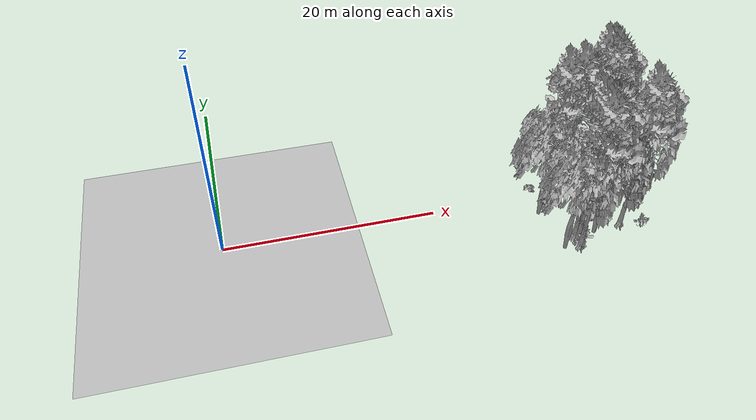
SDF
<sdf version="1.7">
 <world name="default">
  <model name="ground_plane">
   <static>1</static>
   <link name="link">
    <collision name="collision">
     <pose>-50 0 0 0 -0 0</pose>
     <geometry><plane><normal>0 0 1</normal><size>80 80</size></plane></geometry>
     <surface><contact><ode><min_depth>0.01</min_depth><max_vel>0</max_vel></ode></contact></surface>
    </collision>
    <visual name="grass">
     <cast_shadows>0</cast_shadows>
     <geometry>
      <mesh>
       <scale>0.46714285714285714 0.46714285714285714 0.1</scale>
       <uri>file://grass_plane/meshes/grass_plane.dae</uri>
      </mesh>
     </geometry>
    </visual>
   </link>
  </model>
  <model name="Tree 59">
   <static>1</static>
   <pose>36.104915251675095 0.8604717259022365 0 1.57079 -0 0</pose>
   <link name="link">
    <collision name="collision">
     <geometry><mesh><scale>3.5 5 3.5</scale><uri>model://tree_9/meshes/tree_9.obj</uri></mesh></geometry>
    </collision>
    <visual name="visual">
     <geometry><mesh><scale>3.5 5 3.5</scale><uri>model://tree_9/meshes/tree_9.obj</uri></mesh></geometry>
    </visual>
   </link>
  </model>
  <model name="Tree 112">
   <static>1</static>
   <pose>31.931948652359424 -6.317866740346531 0 1.57079 -0 0</pose>
   <link name="link">
    <collision name="collision">
     <geometry><mesh><scale>3.5 5 3.5</scale><uri>model://tree_9/meshes/tree_9.obj</uri></mesh></geometry>
    </collision>
    <visual name="visual">
     <geometry><mesh><scale>3.5 5 3.5</scale><uri>model://tree_9/meshes/tree_9.obj</uri></mesh></geometry>
    </visual>
   </link>
  </model>
  <model name="Tree 260">
   <static>1</static>
   <pose>32.30382466326951 -1.0779947746441394 0 1.57079 -0 0</pose>
   <link name="link">
    <collision name="collision">
     <geometry><mesh><scale>3.5 5 3.5</scale><uri>model://tree_9/meshes/tree_9.obj</uri></mesh></geometry>
    </collision>
    <visual name="visual">
     <geometry><mesh><scale>3.5 5 3.5</scale><uri>model://tree_9/meshes/tree_9.obj</uri></mesh></geometry>
    </visual>
   </link>
  </model>
  <model name="Tree 273">
   <static>1</static>
   <pose>36.712944995056375 -5.247952258374525 0 1.57079 -0 0</pose>
   <link name="link">
    <collision name="collision">
     <geometry><mesh><scale>3.5 5 3.5</scale><uri>model://tree_9/meshes/tree_9.obj</uri></mesh></geometry>
    </collision>
    <visual name="visual">
     <geometry><mesh><scale>3.5 5 3.5</scale><uri>model://tree_9/meshes/tree_9.obj</uri></mesh></geometry>
    </visual>
   </link>
  </model>
  <model name="Tree 300">
   <static>1</static>
   <pose>33.743679119290675 -5.760114541287464 0 1.57079 -0 0</pose>
   <link name="link">
    <collision name="collision">
     <geometry><mesh><scale>3.5 5 3.5</scale><uri>model://tree_2/meshes/tree_2.obj</uri></mesh></geometry>
    </collision>
    <visual name="visual">
     <geometry><mesh><scale>3.5 5 3.5</scale><uri>model://tree_2/meshes/tree_2.obj</uri></mesh></geometry>
    </visual>
   </link>
  </model>
  <model name="Tree 344">
   <static>1</static>
   <pose>30.266762996817604 -6.985094857168399 0 1.57079 -0 0</pose>
   <link name="link">
    <collision name="collision">
     <geometry><mesh><scale>3.5 5 3.5</scale><uri>model://tree_2/meshes/tree_2.obj</uri></mesh></geometry>
    </collision>
    <visual name="visual">
     <geometry><mesh><scale>3.5 5 3.5</scale><uri>model://tree_2/meshes/tree_2.obj</uri></mesh></geometry>
    </visual>
   </link>
  </model>
  <model name="Tree 381">
   <static>1</static>
   <pose>29.628955810943168 -2.3416753122324963 0 1.57079 -0 0</pose>
   <link name="link">
    <collision name="collision">
     <geometry><mesh><scale>3.5 5 3.5</scale><uri>model://tree_2/meshes/tree_2.obj</uri></mesh></geometry>
    </collision>
    <visual name="visual">
     <geometry><mesh><scale>3.5 5 3.5</scale><uri>model://tree_2/meshes/tree_2.obj</uri></mesh></geometry>
    </visual>
   </link>
  </model>
  <model name="Tree 400">
   <static>1</static>
   <pose>31.89485313371354 -7.02762729464304 0 1.57079 -0 0</pose>
   <link name="link">
    <collision name="collision">
     <geometry><mesh><scale>3.5 5 3.5</scale><uri>model://tree_9/meshes/tree_9.obj</uri></mesh></geometry>
    </collision>
    <visual name="visual">
     <geometry><mesh><scale>3.5 5 3.5</scale><uri>model://tree_9/meshes/tree_9.obj</uri></mesh></geometry>
    </visual>
   </link>
  </model>
  <model name="Tree 413">
   <static>1</static>
   <pose>36.054698841761734 0.38433140887075723 0 1.57079 -0 0</pose>
   <link name="link">
    <collision name="collision">
     <geometry><mesh><scale>3.5 5 3.5</scale><uri>model://tree_9/meshes/tree_9.obj</uri></mesh></geometry>
    </collision>
    <visual name="visual">
     <geometry><mesh><scale>3.5 5 3.5</scale><uri>model://tree_9/meshes/tree_9.obj</uri></mesh></geometry>
    </visual>
   </link>
  </model>
  <model name="Tree 486">
   <static>1</static>
   <pose>37.78900538498483 -2.8352211880456863 0 1.57079 -0 0</pose>
   <link name="link">
    <collision name="collision">
     <geometry><mesh><scale>3.5 5 3.5</scale><uri>model://tree_2/meshes/tree_2.obj</uri></mesh></geometry>
    </collision>
    <visual name="visual">
     <geometry><mesh><scale>3.5 5 3.5</scale><uri>model://tree_2/meshes/tree_2.obj</uri></mesh></geometry>
    </visual>
   </link>
  </model>
  <model name="Tree 520">
   <static>1</static>
   <pose>31.85042376067574 -5.7572373308276354 0 1.57079 -0 0</pose>
   <link name="link">
    <collision name="collision">
     <geometry><mesh><scale>3.5 5 3.5</scale><uri>model://tree_9/meshes/tree_9.obj</uri></mesh></geometry>
    </collision>
    <visual name="visual">
     <geometry><mesh><scale>3.5 5 3.5</scale><uri>model://tree_9/meshes/tree_9.obj</uri></mesh></geometry>
    </visual>
   </link>
  </model>
  <model name="Tree 528">
   <static>1</static>
   <pose>33.67421280121701 -5.78843916075958 0 1.57079 -0 0</pose>
   <link name="link">
    <collision name="collision">
     <geometry><mesh><scale>3.5 5 3.5</scale><uri>model://tree_2/meshes/tree_2.obj</uri></mesh></geometry>
    </collision>
    <visual name="visual">
     <geometry><mesh><scale>3.5 5 3.5</scale><uri>model://tree_2/meshes/tree_2.obj</uri></mesh></geometry>
    </visual>
   </link>
  </model>
  <model name="Tree 544">
   <static>1</static>
   <pose>35.584777812214156 0.9781660692755807 0 1.57079 -0 0</pose>
   <link name="link">
    <collision name="collision">
     <geometry><mesh><scale>3.5 5 3.5</scale><uri>model://tree_9/meshes/tree_9.obj</uri></mesh></geometry>
    </collision>
    <visual name="visual">
     <geometry><mesh><scale>3.5 5 3.5</scale><uri>model://tree_9/meshes/tree_9.obj</uri></mesh></geometry>
    </visual>
   </link>
  </model>
  <model name="Tree 566">
   <static>1</static>
   <pose>30.82942290782495 -1.405714721545749 0 1.57079 -0 0</pose>
   <link name="link">
    <collision name="collision">
     <geometry><mesh><scale>3.5 5 3.5</scale><uri>model://tree_9/meshes/tree_9.obj</uri></mesh></geometry>
    </collision>
    <visual name="visual">
     <geometry><mesh><scale>3.5 5 3.5</scale><uri>model://tree_9/meshes/tree_9.obj</uri></mesh></geometry>
    </visual>
   </link>
  </model>
  <model name="Bush 15">
   <static>1</static>
   <pose>30.090377427757105 0.9655497179009558 0 1.57079 -0 0</pose>
   <link name="link">
    <collision name="collision">
     <geometry><mesh><scale>2 2 2</scale><uri>model://bush_2/meshes/bush_2.obj</uri></mesh></geometry>
     <surface><contact><collide_without_contact>false</collide_without_contact></contact></surface>
    </collision>
    <visual name="visual">
     <geometry><mesh><scale>2 2 2</scale><uri>model://bush_2/meshes/bush_2.obj</uri></mesh></geometry>
    </visual>
   </link>
  </model>
  <model name="Bush 20">
   <static>1</static>
   <pose>38.33905507918256 -6.197779600327387 0 1.57079 -0 0</pose>
   <link name="link">
    <collision name="collision">
     <geometry><mesh><scale>2 2 2</scale><uri>model://bush_4/meshes/bush_4.obj</uri></mesh></geometry>
     <surface><contact><collide_without_contact>false</collide_without_contact></contact></surface>
    </collision>
    <visual name="visual">
     <geometry><mesh><scale>2 2 2</scale><uri>model://bush_4/meshes/bush_4.obj</uri></mesh></geometry>
    </visual>
   </link>
  </model>
  <model name="Bush 80">
   <static>1</static>
   <pose>38.381997279303675 -1.0571922986043916 0 1.57079 -0 0</pose>
   <link name="link">
    <collision name="collision">
     <geometry><mesh><scale>2 2 2</scale><uri>model://bush_2/meshes/bush_2.obj</uri></mesh></geometry>
     <surface><contact><collide_without_contact>false</collide_without_contact></contact></surface>
    </collision>
    <visual name="visual">
     <geometry><mesh><scale>2 2 2</scale><uri>model://bush_2/meshes/bush_2.obj</uri></mesh></geometry>
    </visual>
   </link>
  </model>
  <model name="Bush 137">
   <static>1</static>
   <pose>31.901949626886065 -6.92093064834684 0 1.57079 -0 0</pose>
   <link name="link">
    <collision name="collision">
     <geometry><mesh><scale>2 2 2</scale><uri>model://bush_2/meshes/bush_2.obj</uri></mesh></geometry>
     <surface><contact><collide_without_contact>false</collide_without_contact></contact></surface>
    </collision>
    <visual name="visual">
     <geometry><mesh><scale>2 2 2</scale><uri>model://bush_2/meshes/bush_2.obj</uri></mesh></geometry>
    </visual>
   </link>
  </model>
  <model name="Bush 163">
   <static>1</static>
   <pose>33.78778641577405 -3.694063146263453 0 1.57079 -0 0</pose>
   <link name="link">
    <collision name="collision">
     <geometry><mesh><scale>2 2 2</scale><uri>model://bush_2/meshes/bush_2.obj</uri></mesh></geometry>
     <surface><contact><collide_without_contact>false</collide_without_contact></contact></surface>
    </collision>
    <visual name="visual">
     <geometry><mesh><scale>2 2 2</scale><uri>model://bush_2/meshes/bush_2.obj</uri></mesh></geometry>
    </visual>
   </link>
  </model>
  <model name="Bush 212">
   <static>1</static>
   <pose>32.40058391206493 -6.691073399586173 0 1.57079 -0 0</pose>
   <link name="link">
    <collision name="collision">
     <geometry><mesh><scale>2 2 2</scale><uri>model://bush_0/meshes/bush_0.obj</uri></mesh></geometry>
     <surface><contact><collide_without_contact>false</collide_without_contact></contact></surface>
    </collision>
    <visual name="visual">
     <geometry><mesh><scale>2 2 2</scale><uri>model://bush_0/meshes/bush_0.obj</uri></mesh></geometry>
    </visual>
   </link>
  </model>
  <model name="Bush 388">
   <static>1</static>
   <pose>34.12388468223611 -4.062689659056112 0 1.57079 -0 0</pose>
   <link name="link">
    <collision name="collision">
     <geometry><mesh><scale>2 2 2</scale><uri>model://bush_2/meshes/bush_2.obj</uri></mesh></geometry>
     <surface><contact><collide_without_contact>false</collide_without_contact></contact></surface>
    </collision>
    <visual name="visual">
     <geometry><mesh><scale>2 2 2</scale><uri>model://bush_2/meshes/bush_2.obj</uri></mesh></geometry>
    </visual>
   </link>
  </model>
  <model name="Bush 494">
   <static>1</static>
   <pose>34.2785086855299 -3.4528456259884734 0 1.57079 -0 0</pose>
   <link name="link">
    <collision name="collision">
     <geometry><mesh><scale>2 2 2</scale><uri>model://bush_2/meshes/bush_2.obj</uri></mesh></geometry>
     <surface><contact><collide_without_contact>false</collide_without_contact></contact></surface>
    </collision>
    <visual name="visual">
     <geometry><mesh><scale>2 2 2</scale><uri>model://bush_2/meshes/bush_2.obj</uri></mesh></geometry>
    </visual>
   </link>
  </model>
  <model name="Bush 581">
   <static>1</static>
   <pose>34.1026516977756 -4.248436164365714 0 1.57079 -0 0</pose>
   <link name="link">
    <collision name="collision">
     <geometry><mesh><scale>2 2 2</scale><uri>model://bush_1/meshes/bush_1.obj</uri></mesh></geometry>
     <surface><contact><collide_without_contact>false</collide_without_contact></contact></surface>
    </collision>
    <visual name="visual">
     <geometry><mesh><scale>2 2 2</scale><uri>model://bush_1/meshes/bush_1.obj</uri></mesh></geometry>
    </visual>
   </link>
  </model>
 </world>
</sdf>
